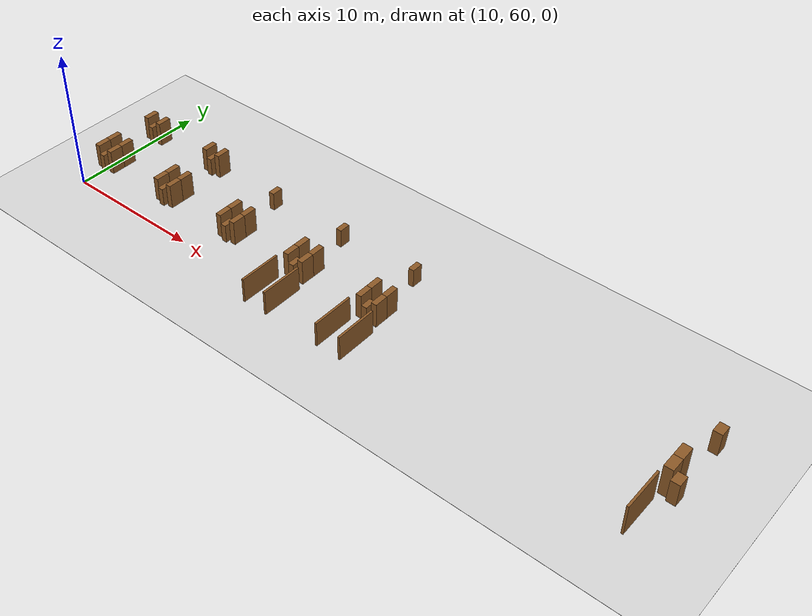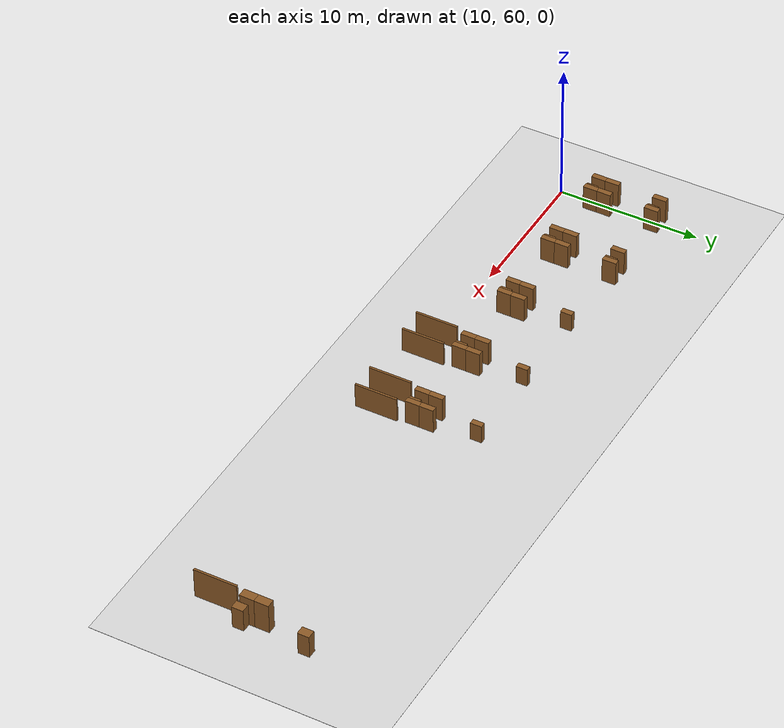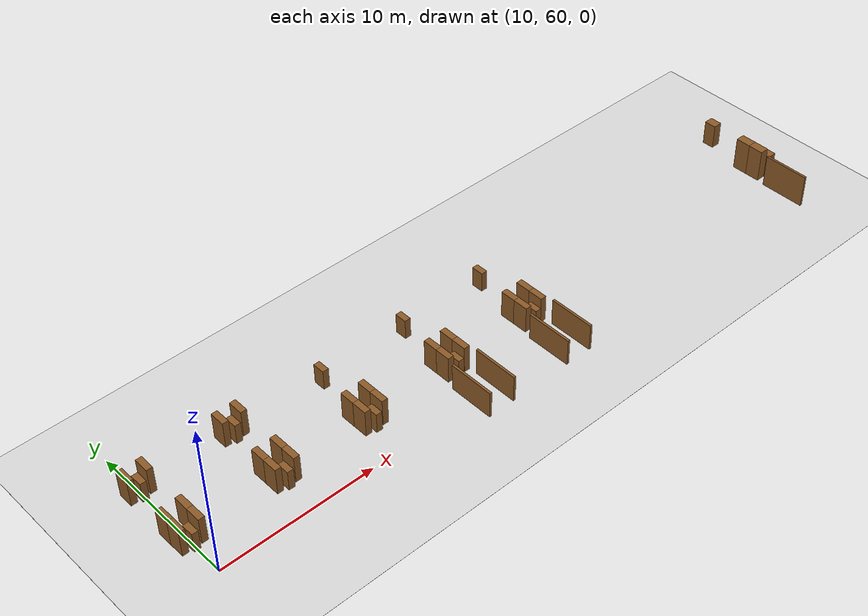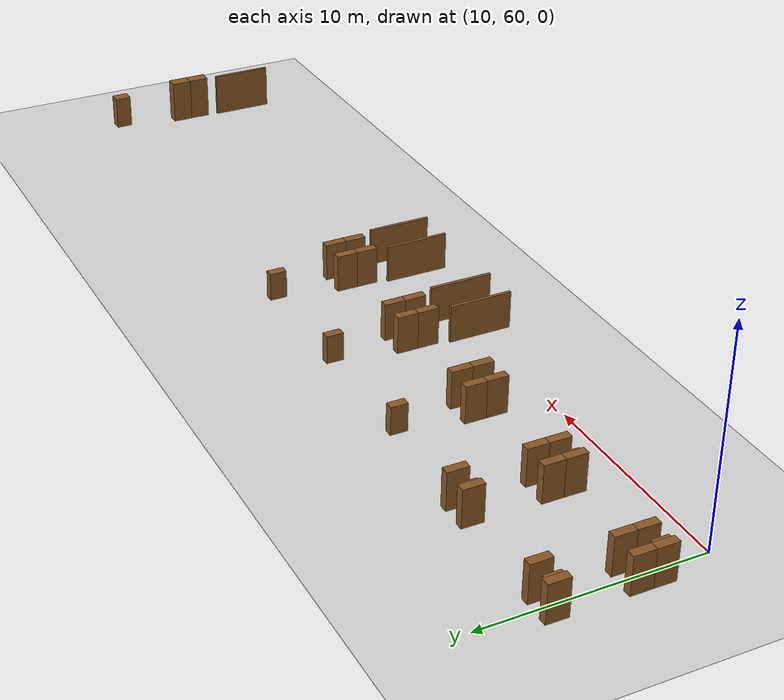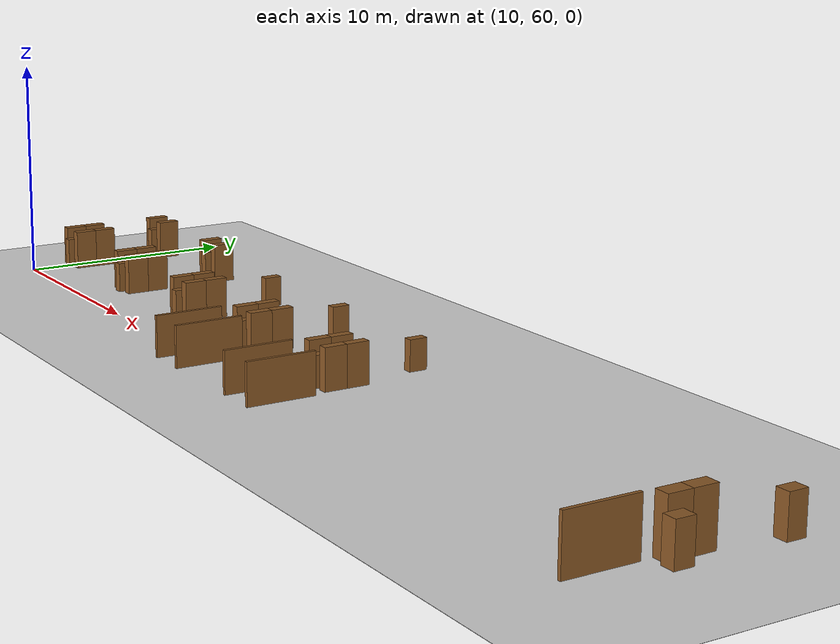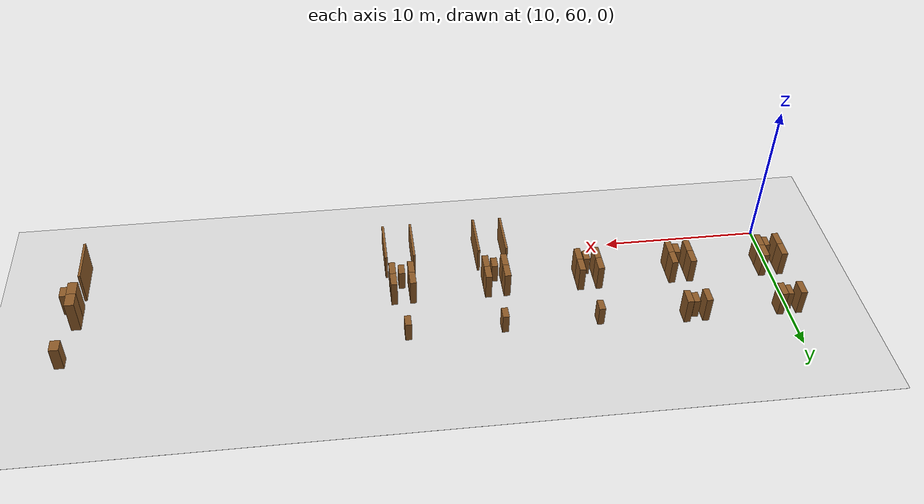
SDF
<sdf version="1.9">
 <world name="realistic_warehouse_150x200m">
  <model name="ground_plane">
   <static>true</static>
   <pose>68.5 102.0 0 0 0 0</pose>
   <link name="ground_link">
    <visual name="ground_visual">
     <geometry><box><size>127.0 194.0 0.01</size></box></geometry>
     <material><ambient>0.85 0.85 0.85 1.0</ambient><diffuse>0.85 0.85 0.85 1.0</diffuse></material>
    </visual>
    <collision name="ground_visual_collision">
     <geometry><box><size>127.0 194.0 0.01</size></box></geometry>
    </collision>
    <collision name="ground_collision">
     <geometry><plane><normal>0 0 1</normal><size>127.0 194.0</size></plane></geometry>
    </collision>
   </link>
  </model>
  <model name="rack_Zone_G_A0_S0_998">
   <static>true</static>
   <pose>9.4 62.5 0.9 0 0 0</pose>
   <link name="rack_Zone_G_A0_S0_998_link">
    <visual name="rack_Zone_G_A0_S0_998_vis">
     <geometry><box><size>0.4 1.0 1.8</size></box></geometry>
     <material><ambient>0.55 0.35 0.15 1.0</ambient><diffuse>0.55 0.35 0.15 1.0</diffuse></material>
    </visual>
    <collision name="rack_Zone_G_A0_S0_998_vis_collision">
     <geometry><box><size>0.4 1.0 1.8</size></box></geometry>
    </collision>
   </link>
  </model>
  <model name="rack_Zone_G_A0_S0_999">
   <static>true</static>
   <pose>9.4 63.5 0.9 0 0 0</pose>
   <link name="rack_Zone_G_A0_S0_999_link">
    <visual name="rack_Zone_G_A0_S0_999_vis">
     <geometry><box><size>0.4 1.0 1.8</size></box></geometry>
     <material><ambient>0.55 0.35 0.15 1.0</ambient><diffuse>0.55 0.35 0.15 1.0</diffuse></material>
    </visual>
    <collision name="rack_Zone_G_A0_S0_999_vis_collision">
     <geometry><box><size>0.4 1.0 1.8</size></box></geometry>
    </collision>
   </link>
  </model>
  <model name="rack_Zone_G_A0_S0_1000">
   <static>true</static>
   <pose>10.6 62.5 0.9 0 0 0</pose>
   <link name="rack_Zone_G_A0_S0_1000_link">
    <visual name="rack_Zone_G_A0_S0_1000_vis">
     <geometry><box><size>0.4 1.0 1.8</size></box></geometry>
     <material><ambient>0.55 0.35 0.15 1.0</ambient><diffuse>0.55 0.35 0.15 1.0</diffuse></material>
    </visual>
    <collision name="rack_Zone_G_A0_S0_1000_vis_collision">
     <geometry><box><size>0.4 1.0 1.8</size></box></geometry>
    </collision>
   </link>
  </model>
  <model name="rack_Zone_G_A0_S0_1001">
   <static>true</static>
   <pose>10.6 63.5 0.9 0 0 0</pose>
   <link name="rack_Zone_G_A0_S0_1001_link">
    <visual name="rack_Zone_G_A0_S0_1001_vis">
     <geometry><box><size>0.4 1.0 1.8</size></box></geometry>
     <material><ambient>0.55 0.35 0.15 1.0</ambient><diffuse>0.55 0.35 0.15 1.0</diffuse></material>
    </visual>
    <collision name="rack_Zone_G_A0_S0_1001_vis_collision">
     <geometry><box><size>0.4 1.0 1.8</size></box></geometry>
    </collision>
   </link>
  </model>
  <model name="rack_Zone_G_A0_S0_1002">
   <static>true</static>
   <pose>10.0 62.2 0.675 0 0 0</pose>
   <link name="rack_Zone_G_A0_S0_1002_link">
    <visual name="rack_Zone_G_A0_S0_1002_vis">
     <geometry><box><size>0.4 0.8 1.35</size></box></geometry>
     <material><ambient>0.55 0.35 0.15 1.0</ambient><diffuse>0.55 0.35 0.15 1.0</diffuse></material>
    </visual>
    <collision name="rack_Zone_G_A0_S0_1002_vis_collision">
     <geometry><box><size>0.4 0.8 1.35</size></box></geometry>
    </collision>
   </link>
  </model>
  <model name="rack_Zone_G_A0_S1_1003">
   <static>true</static>
   <pose>9.4 67.0 0.9 0 0 0</pose>
   <link name="rack_Zone_G_A0_S1_1003_link">
    <visual name="rack_Zone_G_A0_S1_1003_vis">
     <geometry><box><size>0.4 1.0 1.8</size></box></geometry>
     <material><ambient>0.55 0.35 0.15 1.0</ambient><diffuse>0.55 0.35 0.15 1.0</diffuse></material>
    </visual>
    <collision name="rack_Zone_G_A0_S1_1003_vis_collision">
     <geometry><box><size>0.4 1.0 1.8</size></box></geometry>
    </collision>
   </link>
  </model>
  <model name="rack_Zone_G_A0_S1_1005">
   <static>true</static>
   <pose>10.6 67.0 0.9 0 0 0</pose>
   <link name="rack_Zone_G_A0_S1_1005_link">
    <visual name="rack_Zone_G_A0_S1_1005_vis">
     <geometry><box><size>0.4 1.0 1.8</size></box></geometry>
     <material><ambient>0.55 0.35 0.15 1.0</ambient><diffuse>0.55 0.35 0.15 1.0</diffuse></material>
    </visual>
    <collision name="rack_Zone_G_A0_S1_1005_vis_collision">
     <geometry><box><size>0.4 1.0 1.8</size></box></geometry>
    </collision>
   </link>
  </model>
  <model name="rack_Zone_G_A0_S1_1007">
   <static>true</static>
   <pose>10.0 66.7 0.675 0 0 0</pose>
   <link name="rack_Zone_G_A0_S1_1007_link">
    <visual name="rack_Zone_G_A0_S1_1007_vis">
     <geometry><box><size>0.4 0.8 1.35</size></box></geometry>
     <material><ambient>0.55 0.35 0.15 1.0</ambient><diffuse>0.55 0.35 0.15 1.0</diffuse></material>
    </visual>
    <collision name="rack_Zone_G_A0_S1_1007_vis_collision">
     <geometry><box><size>0.4 0.8 1.35</size></box></geometry>
    </collision>
   </link>
  </model>
  <model name="rack_Zone_G_A1_S0_1042">
   <static>true</static>
   <pose>15.4 62.5 0.9 0 0 0</pose>
   <link name="rack_Zone_G_A1_S0_1042_link">
    <visual name="rack_Zone_G_A1_S0_1042_vis">
     <geometry><box><size>0.4 1.0 1.8</size></box></geometry>
     <material><ambient>0.55 0.35 0.15 1.0</ambient><diffuse>0.55 0.35 0.15 1.0</diffuse></material>
    </visual>
    <collision name="rack_Zone_G_A1_S0_1042_vis_collision">
     <geometry><box><size>0.4 1.0 1.8</size></box></geometry>
    </collision>
   </link>
  </model>
  <model name="rack_Zone_G_A1_S0_1043">
   <static>true</static>
   <pose>15.4 63.5 0.9 0 0 0</pose>
   <link name="rack_Zone_G_A1_S0_1043_link">
    <visual name="rack_Zone_G_A1_S0_1043_vis">
     <geometry><box><size>0.4 1.0 1.8</size></box></geometry>
     <material><ambient>0.55 0.35 0.15 1.0</ambient><diffuse>0.55 0.35 0.15 1.0</diffuse></material>
    </visual>
    <collision name="rack_Zone_G_A1_S0_1043_vis_collision">
     <geometry><box><size>0.4 1.0 1.8</size></box></geometry>
    </collision>
   </link>
  </model>
  <model name="rack_Zone_G_A1_S0_1044">
   <static>true</static>
   <pose>16.6 62.5 0.9 0 0 0</pose>
   <link name="rack_Zone_G_A1_S0_1044_link">
    <visual name="rack_Zone_G_A1_S0_1044_vis">
     <geometry><box><size>0.4 1.0 1.8</size></box></geometry>
     <material><ambient>0.55 0.35 0.15 1.0</ambient><diffuse>0.55 0.35 0.15 1.0</diffuse></material>
    </visual>
    <collision name="rack_Zone_G_A1_S0_1044_vis_collision">
     <geometry><box><size>0.4 1.0 1.8</size></box></geometry>
    </collision>
   </link>
  </model>
  <model name="rack_Zone_G_A1_S0_1045">
   <static>true</static>
   <pose>16.6 63.5 0.9 0 0 0</pose>
   <link name="rack_Zone_G_A1_S0_1045_link">
    <visual name="rack_Zone_G_A1_S0_1045_vis">
     <geometry><box><size>0.4 1.0 1.8</size></box></geometry>
     <material><ambient>0.55 0.35 0.15 1.0</ambient><diffuse>0.55 0.35 0.15 1.0</diffuse></material>
    </visual>
    <collision name="rack_Zone_G_A1_S0_1045_vis_collision">
     <geometry><box><size>0.4 1.0 1.8</size></box></geometry>
    </collision>
   </link>
  </model>
  <model name="rack_Zone_G_A1_S0_1046">
   <static>true</static>
   <pose>16.0 62.2 0.675 0 0 0</pose>
   <link name="rack_Zone_G_A1_S0_1046_link">
    <visual name="rack_Zone_G_A1_S0_1046_vis">
     <geometry><box><size>0.4 0.8 1.35</size></box></geometry>
     <material><ambient>0.55 0.35 0.15 1.0</ambient><diffuse>0.55 0.35 0.15 1.0</diffuse></material>
    </visual>
    <collision name="rack_Zone_G_A1_S0_1046_vis_collision">
     <geometry><box><size>0.4 0.8 1.35</size></box></geometry>
    </collision>
   </link>
  </model>
  <model name="rack_Zone_G_A1_S1_1047">
   <static>true</static>
   <pose>15.4 67.0 0.9 0 0 0</pose>
   <link name="rack_Zone_G_A1_S1_1047_link">
    <visual name="rack_Zone_G_A1_S1_1047_vis">
     <geometry><box><size>0.4 1.0 1.8</size></box></geometry>
     <material><ambient>0.55 0.35 0.15 1.0</ambient><diffuse>0.55 0.35 0.15 1.0</diffuse></material>
    </visual>
    <collision name="rack_Zone_G_A1_S1_1047_vis_collision">
     <geometry><box><size>0.4 1.0 1.8</size></box></geometry>
    </collision>
   </link>
  </model>
  <model name="rack_Zone_G_A1_S1_1049">
   <static>true</static>
   <pose>16.6 67.0 0.9 0 0 0</pose>
   <link name="rack_Zone_G_A1_S1_1049_link">
    <visual name="rack_Zone_G_A1_S1_1049_vis">
     <geometry><box><size>0.4 1.0 1.8</size></box></geometry>
     <material><ambient>0.55 0.35 0.15 1.0</ambient><diffuse>0.55 0.35 0.15 1.0</diffuse></material>
    </visual>
    <collision name="rack_Zone_G_A1_S1_1049_vis_collision">
     <geometry><box><size>0.4 1.0 1.8</size></box></geometry>
    </collision>
   </link>
  </model>
  <model name="rack_Zone_G_A1_S1_1051">
   <static>true</static>
   <pose>16.0 66.7 0.675 0 0 0</pose>
   <link name="rack_Zone_G_A1_S1_1051_link">
    <visual name="rack_Zone_G_A1_S1_1051_vis">
     <geometry><box><size>0.4 0.8 1.35</size></box></geometry>
     <material><ambient>0.55 0.35 0.15 1.0</ambient><diffuse>0.55 0.35 0.15 1.0</diffuse></material>
    </visual>
    <collision name="rack_Zone_G_A1_S1_1051_vis_collision">
     <geometry><box><size>0.4 0.8 1.35</size></box></geometry>
    </collision>
   </link>
  </model>
  <model name="rack_Zone_G_A2_S0_1086">
   <static>true</static>
   <pose>21.4 62.5 0.9 0 0 0</pose>
   <link name="rack_Zone_G_A2_S0_1086_link">
    <visual name="rack_Zone_G_A2_S0_1086_vis">
     <geometry><box><size>0.4 1.0 1.8</size></box></geometry>
     <material><ambient>0.55 0.35 0.15 1.0</ambient><diffuse>0.55 0.35 0.15 1.0</diffuse></material>
    </visual>
    <collision name="rack_Zone_G_A2_S0_1086_vis_collision">
     <geometry><box><size>0.4 1.0 1.8</size></box></geometry>
    </collision>
   </link>
  </model>
  <model name="rack_Zone_G_A2_S0_1087">
   <static>true</static>
   <pose>21.4 63.5 0.9 0 0 0</pose>
   <link name="rack_Zone_G_A2_S0_1087_link">
    <visual name="rack_Zone_G_A2_S0_1087_vis">
     <geometry><box><size>0.4 1.0 1.8</size></box></geometry>
     <material><ambient>0.55 0.35 0.15 1.0</ambient><diffuse>0.55 0.35 0.15 1.0</diffuse></material>
    </visual>
    <collision name="rack_Zone_G_A2_S0_1087_vis_collision">
     <geometry><box><size>0.4 1.0 1.8</size></box></geometry>
    </collision>
   </link>
  </model>
  <model name="rack_Zone_G_A2_S0_1088">
   <static>true</static>
   <pose>22.6 62.5 0.9 0 0 0</pose>
   <link name="rack_Zone_G_A2_S0_1088_link">
    <visual name="rack_Zone_G_A2_S0_1088_vis">
     <geometry><box><size>0.4 1.0 1.8</size></box></geometry>
     <material><ambient>0.55 0.35 0.15 1.0</ambient><diffuse>0.55 0.35 0.15 1.0</diffuse></material>
    </visual>
    <collision name="rack_Zone_G_A2_S0_1088_vis_collision">
     <geometry><box><size>0.4 1.0 1.8</size></box></geometry>
    </collision>
   </link>
  </model>
  <model name="rack_Zone_G_A2_S0_1089">
   <static>true</static>
   <pose>22.6 63.5 0.9 0 0 0</pose>
   <link name="rack_Zone_G_A2_S0_1089_link">
    <visual name="rack_Zone_G_A2_S0_1089_vis">
     <geometry><box><size>0.4 1.0 1.8</size></box></geometry>
     <material><ambient>0.55 0.35 0.15 1.0</ambient><diffuse>0.55 0.35 0.15 1.0</diffuse></material>
    </visual>
    <collision name="rack_Zone_G_A2_S0_1089_vis_collision">
     <geometry><box><size>0.4 1.0 1.8</size></box></geometry>
    </collision>
   </link>
  </model>
  <model name="rack_Zone_G_A2_S0_1090">
   <static>true</static>
   <pose>22.0 62.2 0.675 0 0 0</pose>
   <link name="rack_Zone_G_A2_S0_1090_link">
    <visual name="rack_Zone_G_A2_S0_1090_vis">
     <geometry><box><size>0.4 0.8 1.35</size></box></geometry>
     <material><ambient>0.55 0.35 0.15 1.0</ambient><diffuse>0.55 0.35 0.15 1.0</diffuse></material>
    </visual>
    <collision name="rack_Zone_G_A2_S0_1090_vis_collision">
     <geometry><box><size>0.4 0.8 1.35</size></box></geometry>
    </collision>
   </link>
  </model>
  <model name="rack_Zone_G_A2_S1_1095">
   <static>true</static>
   <pose>22.0 66.7 0.675 0 0 0</pose>
   <link name="rack_Zone_G_A2_S1_1095_link">
    <visual name="rack_Zone_G_A2_S1_1095_vis">
     <geometry><box><size>0.4 0.8 1.35</size></box></geometry>
     <material><ambient>0.55 0.35 0.15 1.0</ambient><diffuse>0.55 0.35 0.15 1.0</diffuse></material>
    </visual>
    <collision name="rack_Zone_G_A2_S1_1095_vis_collision">
     <geometry><box><size>0.4 0.8 1.35</size></box></geometry>
    </collision>
   </link>
  </model>
  <model name="aisle_L_Zone_G_A3_entry_1128">
   <static>true</static>
   <pose>27.1 60.0 0.9 0 0 0</pose>
   <link name="aisle_L_Zone_G_A3_entry_1128_link">
    <visual name="aisle_L_Zone_G_A3_entry_1128_vis">
     <geometry><box><size>0.15 3.0 1.8</size></box></geometry>
     <material><ambient>0.55 0.35 0.15 1.0</ambient><diffuse>0.55 0.35 0.15 1.0</diffuse></material>
    </visual>
    <collision name="aisle_L_Zone_G_A3_entry_1128_vis_collision">
     <geometry><box><size>0.15 3.0 1.8</size></box></geometry>
    </collision>
   </link>
  </model>
  <model name="aisle_R_Zone_G_A3_entry_1129">
   <static>true</static>
   <pose>28.9 60.0 0.9 0 0 0</pose>
   <link name="aisle_R_Zone_G_A3_entry_1129_link">
    <visual name="aisle_R_Zone_G_A3_entry_1129_vis">
     <geometry><box><size>0.15 3.0 1.8</size></box></geometry>
     <material><ambient>0.55 0.35 0.15 1.0</ambient><diffuse>0.55 0.35 0.15 1.0</diffuse></material>
    </visual>
    <collision name="aisle_R_Zone_G_A3_entry_1129_vis_collision">
     <geometry><box><size>0.15 3.0 1.8</size></box></geometry>
    </collision>
   </link>
  </model>
  <model name="rack_Zone_G_A3_S0_1130">
   <static>true</static>
   <pose>27.4 62.5 0.9 0 0 0</pose>
   <link name="rack_Zone_G_A3_S0_1130_link">
    <visual name="rack_Zone_G_A3_S0_1130_vis">
     <geometry><box><size>0.4 1.0 1.8</size></box></geometry>
     <material><ambient>0.55 0.35 0.15 1.0</ambient><diffuse>0.55 0.35 0.15 1.0</diffuse></material>
    </visual>
    <collision name="rack_Zone_G_A3_S0_1130_vis_collision">
     <geometry><box><size>0.4 1.0 1.8</size></box></geometry>
    </collision>
   </link>
  </model>
  <model name="rack_Zone_G_A3_S0_1131">
   <static>true</static>
   <pose>27.4 63.5 0.9 0 0 0</pose>
   <link name="rack_Zone_G_A3_S0_1131_link">
    <visual name="rack_Zone_G_A3_S0_1131_vis">
     <geometry><box><size>0.4 1.0 1.8</size></box></geometry>
     <material><ambient>0.55 0.35 0.15 1.0</ambient><diffuse>0.55 0.35 0.15 1.0</diffuse></material>
    </visual>
    <collision name="rack_Zone_G_A3_S0_1131_vis_collision">
     <geometry><box><size>0.4 1.0 1.8</size></box></geometry>
    </collision>
   </link>
  </model>
  <model name="rack_Zone_G_A3_S0_1132">
   <static>true</static>
   <pose>28.6 62.5 0.9 0 0 0</pose>
   <link name="rack_Zone_G_A3_S0_1132_link">
    <visual name="rack_Zone_G_A3_S0_1132_vis">
     <geometry><box><size>0.4 1.0 1.8</size></box></geometry>
     <material><ambient>0.55 0.35 0.15 1.0</ambient><diffuse>0.55 0.35 0.15 1.0</diffuse></material>
    </visual>
    <collision name="rack_Zone_G_A3_S0_1132_vis_collision">
     <geometry><box><size>0.4 1.0 1.8</size></box></geometry>
    </collision>
   </link>
  </model>
  <model name="rack_Zone_G_A3_S0_1133">
   <static>true</static>
   <pose>28.6 63.5 0.9 0 0 0</pose>
   <link name="rack_Zone_G_A3_S0_1133_link">
    <visual name="rack_Zone_G_A3_S0_1133_vis">
     <geometry><box><size>0.4 1.0 1.8</size></box></geometry>
     <material><ambient>0.55 0.35 0.15 1.0</ambient><diffuse>0.55 0.35 0.15 1.0</diffuse></material>
    </visual>
    <collision name="rack_Zone_G_A3_S0_1133_vis_collision">
     <geometry><box><size>0.4 1.0 1.8</size></box></geometry>
    </collision>
   </link>
  </model>
  <model name="rack_Zone_G_A3_S0_1134">
   <static>true</static>
   <pose>28.0 62.2 0.675 0 0 0</pose>
   <link name="rack_Zone_G_A3_S0_1134_link">
    <visual name="rack_Zone_G_A3_S0_1134_vis">
     <geometry><box><size>0.4 0.8 1.35</size></box></geometry>
     <material><ambient>0.55 0.35 0.15 1.0</ambient><diffuse>0.55 0.35 0.15 1.0</diffuse></material>
    </visual>
    <collision name="rack_Zone_G_A3_S0_1134_vis_collision">
     <geometry><box><size>0.4 0.8 1.35</size></box></geometry>
    </collision>
   </link>
  </model>
  <model name="rack_Zone_G_A3_S1_1139">
   <static>true</static>
   <pose>28.0 66.7 0.675 0 0 0</pose>
   <link name="rack_Zone_G_A3_S1_1139_link">
    <visual name="rack_Zone_G_A3_S1_1139_vis">
     <geometry><box><size>0.4 0.8 1.35</size></box></geometry>
     <material><ambient>0.55 0.35 0.15 1.0</ambient><diffuse>0.55 0.35 0.15 1.0</diffuse></material>
    </visual>
    <collision name="rack_Zone_G_A3_S1_1139_vis_collision">
     <geometry><box><size>0.4 0.8 1.35</size></box></geometry>
    </collision>
   </link>
  </model>
  <model name="aisle_L_Zone_G_A4_entry_1172">
   <static>true</static>
   <pose>33.1 60.0 0.9 0 0 0</pose>
   <link name="aisle_L_Zone_G_A4_entry_1172_link">
    <visual name="aisle_L_Zone_G_A4_entry_1172_vis">
     <geometry><box><size>0.15 3.0 1.8</size></box></geometry>
     <material><ambient>0.55 0.35 0.15 1.0</ambient><diffuse>0.55 0.35 0.15 1.0</diffuse></material>
    </visual>
    <collision name="aisle_L_Zone_G_A4_entry_1172_vis_collision">
     <geometry><box><size>0.15 3.0 1.8</size></box></geometry>
    </collision>
   </link>
  </model>
  <model name="aisle_R_Zone_G_A4_entry_1173">
   <static>true</static>
   <pose>34.9 60.0 0.9 0 0 0</pose>
   <link name="aisle_R_Zone_G_A4_entry_1173_link">
    <visual name="aisle_R_Zone_G_A4_entry_1173_vis">
     <geometry><box><size>0.15 3.0 1.8</size></box></geometry>
     <material><ambient>0.55 0.35 0.15 1.0</ambient><diffuse>0.55 0.35 0.15 1.0</diffuse></material>
    </visual>
    <collision name="aisle_R_Zone_G_A4_entry_1173_vis_collision">
     <geometry><box><size>0.15 3.0 1.8</size></box></geometry>
    </collision>
   </link>
  </model>
  <model name="rack_Zone_G_A4_S0_1174">
   <static>true</static>
   <pose>33.4 62.5 0.9 0 0 0</pose>
   <link name="rack_Zone_G_A4_S0_1174_link">
    <visual name="rack_Zone_G_A4_S0_1174_vis">
     <geometry><box><size>0.4 1.0 1.8</size></box></geometry>
     <material><ambient>0.55 0.35 0.15 1.0</ambient><diffuse>0.55 0.35 0.15 1.0</diffuse></material>
    </visual>
    <collision name="rack_Zone_G_A4_S0_1174_vis_collision">
     <geometry><box><size>0.4 1.0 1.8</size></box></geometry>
    </collision>
   </link>
  </model>
  <model name="rack_Zone_G_A4_S0_1175">
   <static>true</static>
   <pose>33.4 63.5 0.9 0 0 0</pose>
   <link name="rack_Zone_G_A4_S0_1175_link">
    <visual name="rack_Zone_G_A4_S0_1175_vis">
     <geometry><box><size>0.4 1.0 1.8</size></box></geometry>
     <material><ambient>0.55 0.35 0.15 1.0</ambient><diffuse>0.55 0.35 0.15 1.0</diffuse></material>
    </visual>
    <collision name="rack_Zone_G_A4_S0_1175_vis_collision">
     <geometry><box><size>0.4 1.0 1.8</size></box></geometry>
    </collision>
   </link>
  </model>
  <model name="rack_Zone_G_A4_S0_1176">
   <static>true</static>
   <pose>34.6 62.5 0.9 0 0 0</pose>
   <link name="rack_Zone_G_A4_S0_1176_link">
    <visual name="rack_Zone_G_A4_S0_1176_vis">
     <geometry><box><size>0.4 1.0 1.8</size></box></geometry>
     <material><ambient>0.55 0.35 0.15 1.0</ambient><diffuse>0.55 0.35 0.15 1.0</diffuse></material>
    </visual>
    <collision name="rack_Zone_G_A4_S0_1176_vis_collision">
     <geometry><box><size>0.4 1.0 1.8</size></box></geometry>
    </collision>
   </link>
  </model>
  <model name="rack_Zone_G_A4_S0_1177">
   <static>true</static>
   <pose>34.6 63.5 0.9 0 0 0</pose>
   <link name="rack_Zone_G_A4_S0_1177_link">
    <visual name="rack_Zone_G_A4_S0_1177_vis">
     <geometry><box><size>0.4 1.0 1.8</size></box></geometry>
     <material><ambient>0.55 0.35 0.15 1.0</ambient><diffuse>0.55 0.35 0.15 1.0</diffuse></material>
    </visual>
    <collision name="rack_Zone_G_A4_S0_1177_vis_collision">
     <geometry><box><size>0.4 1.0 1.8</size></box></geometry>
    </collision>
   </link>
  </model>
  <model name="rack_Zone_G_A4_S0_1178">
   <static>true</static>
   <pose>34.0 62.2 0.675 0 0 0</pose>
   <link name="rack_Zone_G_A4_S0_1178_link">
    <visual name="rack_Zone_G_A4_S0_1178_vis">
     <geometry><box><size>0.4 0.8 1.35</size></box></geometry>
     <material><ambient>0.55 0.35 0.15 1.0</ambient><diffuse>0.55 0.35 0.15 1.0</diffuse></material>
    </visual>
    <collision name="rack_Zone_G_A4_S0_1178_vis_collision">
     <geometry><box><size>0.4 0.8 1.35</size></box></geometry>
    </collision>
   </link>
  </model>
  <model name="rack_Zone_G_A4_S1_1183">
   <static>true</static>
   <pose>34.0 66.7 0.675 0 0 0</pose>
   <link name="rack_Zone_G_A4_S1_1183_link">
    <visual name="rack_Zone_G_A4_S1_1183_vis">
     <geometry><box><size>0.4 0.8 1.35</size></box></geometry>
     <material><ambient>0.55 0.35 0.15 1.0</ambient><diffuse>0.55 0.35 0.15 1.0</diffuse></material>
    </visual>
    <collision name="rack_Zone_G_A4_S1_1183_vis_collision">
     <geometry><box><size>0.4 0.8 1.35</size></box></geometry>
    </collision>
   </link>
  </model>
  <model name="aisle_L_Zone_H_A0_entry_1221">
   <static>true</static>
   <pose>54.1 60.0 1.1 0 0 0</pose>
   <link name="aisle_L_Zone_H_A0_entry_1221_link">
    <visual name="aisle_L_Zone_H_A0_entry_1221_vis">
     <geometry><box><size>0.15 3.0 2.2</size></box></geometry>
     <material><ambient>0.55 0.35 0.15 1.0</ambient><diffuse>0.55 0.35 0.15 1.0</diffuse></material>
    </visual>
    <collision name="aisle_L_Zone_H_A0_entry_1221_vis_collision">
     <geometry><box><size>0.15 3.0 2.2</size></box></geometry>
    </collision>
   </link>
  </model>
  <model name="rack_Zone_H_A0_S0_1223">
   <static>true</static>
   <pose>54.4 62.5 1.1 0 0 0</pose>
   <link name="rack_Zone_H_A0_S0_1223_link">
    <visual name="rack_Zone_H_A0_S0_1223_vis">
     <geometry><box><size>0.6 1.0 2.2</size></box></geometry>
     <material><ambient>0.55 0.35 0.15 1.0</ambient><diffuse>0.55 0.35 0.15 1.0</diffuse></material>
    </visual>
    <collision name="rack_Zone_H_A0_S0_1223_vis_collision">
     <geometry><box><size>0.6 1.0 2.2</size></box></geometry>
    </collision>
   </link>
  </model>
  <model name="rack_Zone_H_A0_S0_1224">
   <static>true</static>
   <pose>54.4 63.5 1.1 0 0 0</pose>
   <link name="rack_Zone_H_A0_S0_1224_link">
    <visual name="rack_Zone_H_A0_S0_1224_vis">
     <geometry><box><size>0.6 1.0 2.2</size></box></geometry>
     <material><ambient>0.55 0.35 0.15 1.0</ambient><diffuse>0.55 0.35 0.15 1.0</diffuse></material>
    </visual>
    <collision name="rack_Zone_H_A0_S0_1224_vis_collision">
     <geometry><box><size>0.6 1.0 2.2</size></box></geometry>
    </collision>
   </link>
  </model>
  <model name="rack_Zone_H_A0_S0_1227">
   <static>true</static>
   <pose>55.0 62.2 0.8250000000000001 0 0 0</pose>
   <link name="rack_Zone_H_A0_S0_1227_link">
    <visual name="rack_Zone_H_A0_S0_1227_vis">
     <geometry><box><size>0.6 0.8 1.6500000000000001</size></box></geometry>
     <material><ambient>0.55 0.35 0.15 1.0</ambient><diffuse>0.55 0.35 0.15 1.0</diffuse></material>
    </visual>
    <collision name="rack_Zone_H_A0_S0_1227_vis_collision">
     <geometry><box><size>0.6 0.8 1.6500000000000001</size></box></geometry>
    </collision>
   </link>
  </model>
  <model name="rack_Zone_H_A0_S1_1232">
   <static>true</static>
   <pose>55.0 66.7 0.8250000000000001 0 0 0</pose>
   <link name="rack_Zone_H_A0_S1_1232_link">
    <visual name="rack_Zone_H_A0_S1_1232_vis">
     <geometry><box><size>0.6 0.8 1.6500000000000001</size></box></geometry>
     <material><ambient>0.55 0.35 0.15 1.0</ambient><diffuse>0.55 0.35 0.15 1.0</diffuse></material>
    </visual>
    <collision name="rack_Zone_H_A0_S1_1232_vis_collision">
     <geometry><box><size>0.6 0.8 1.6500000000000001</size></box></geometry>
    </collision>
   </link>
  </model>
 </world>
</sdf>
